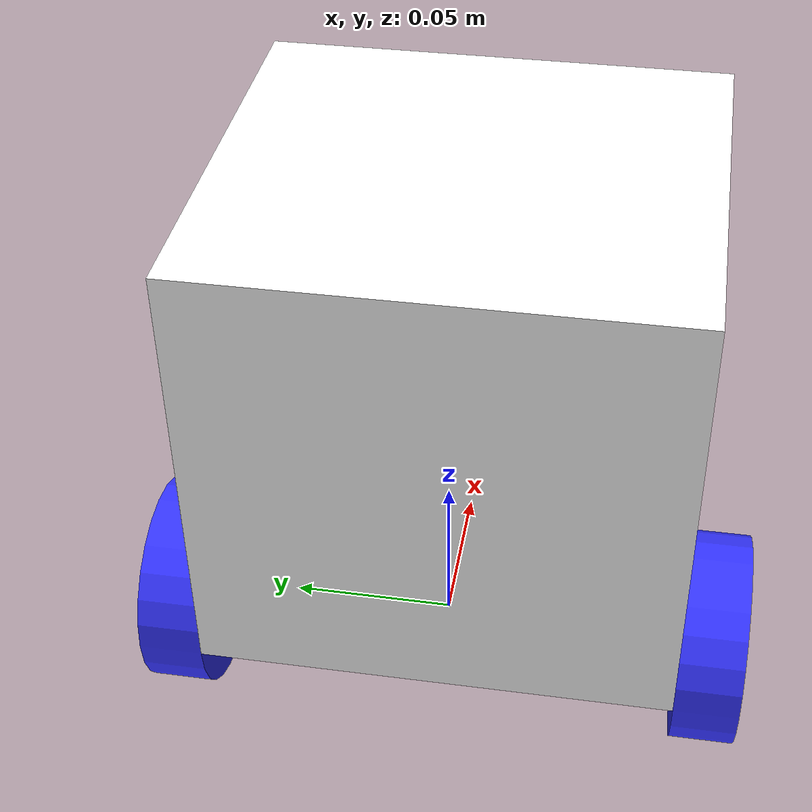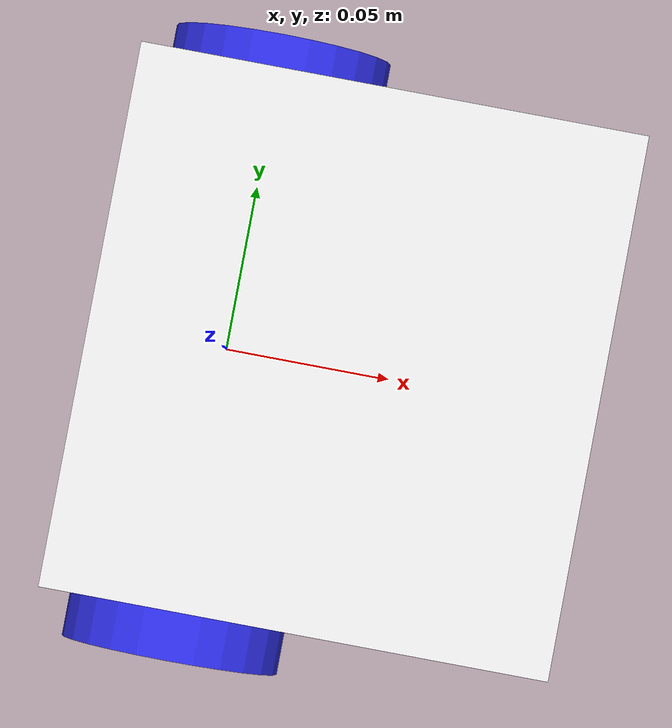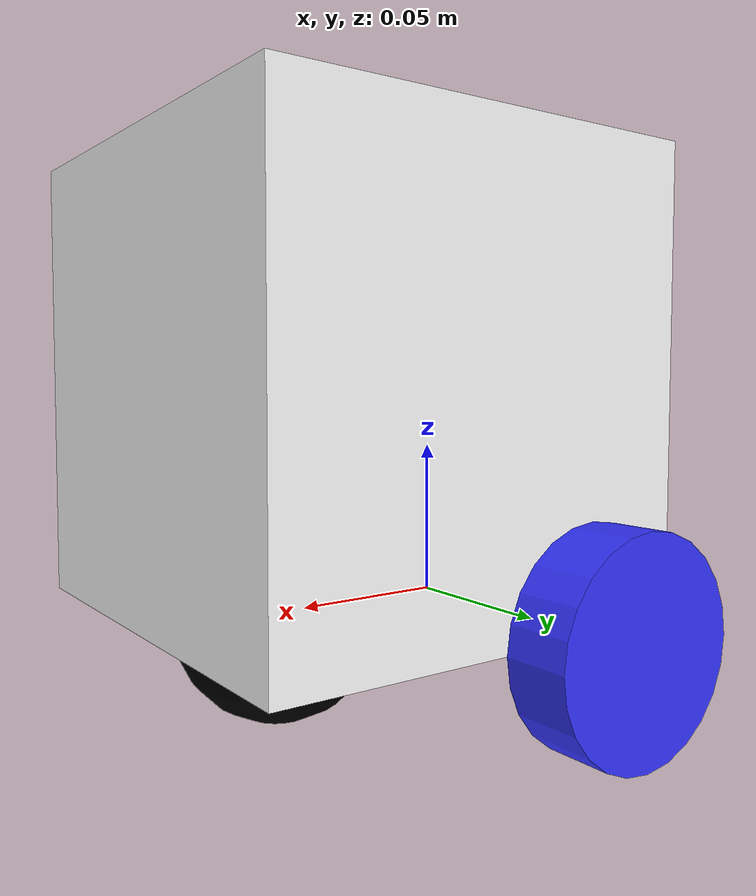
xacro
<?xml version="1.0"?>
<robot xmlns:xacro="http://www.ros.org/wiki/xacro" >

    <xacro:include filename="inertial_macros.xacro"/>

    <material name="white">
        <color rgba="1 1 1 1" />
    </material>

    <material name="orange">
        <color rgba="1 0.3 0.1 1" />
    </material>

    <material name="blue">
        <color rgba="0.2 0.2 1 1" />
    </material>

    <material name="black">
        <color rgba="0 0 0 1" />
    </material>

    <link name="base_link">

    </link>

    <!-- BASE FOOTPRINT -->

    <joint name="base_footprint_joint" type="fixed">
        <parent link="base_link"/>
        <child link="base_footprint" />
        <origin xyz="0 0 0" rpy="0 0 0 "/>
    </joint>

    <link name="base_footprint">

    </link>

    <!-- CHASSIS -->

    <joint name="chassis_joint" type="fixed">
        <parent link="base_link"/>
        <child link="chassis" />
        <origin xyz="-0.033 0 0"/>
    </joint>

    <link name="chassis">
        <visual>
            <origin xyz="0.069 0 0.0715"/>
            <geometry>
                <box size="0.138 0.148 0.143"/>
            </geometry>
            <material name="white"/>
        </visual>
        <collision>
            <origin xyz="0.069 0 0.0715"/>
            <geometry>
                <box size="0.138 0.148 0.143"/>
            </geometry>
        </collision>
        <xacro:inertial_box mass="0.8" x="0.138" y="0.148" z="0.143">
            <origin xyz="0.069 0 0.0715" rpy="0 0 0"/>
        </xacro:inertial_box>
    </link>

    <gazebo reference="chassis">
        <material>Gazebo/White</material>
    </gazebo>

    <!-- LEFT WHEEL-->

    <joint name="left_wheel_joint" type="continuous">
        <parent link ="base_link"/>
        <child link="left_wheel"/>
        <origin xyz="0 0.084 0" rpy="-${pi/2} 0 0"/>
        <axis xyz="0 0 1"/>
    </joint>

    <link name="left_wheel">
        <visual>
            <geometry>
                <cylinder radius="0.033" length="0.02"/>
            </geometry>
            <material name="blue"/>
        </visual>
        <collision>
            <geometry>
                <sphere radius="0.033"/>
            </geometry>
        </collision>
        <xacro:inertial_cylinder mass="0.1" length="0.02" radius="0.033">
            <origin xyz="0 0 0" rpy="0 0 0"/>
        </xacro:inertial_cylinder>
    </link>

    <gazebo reference="left_wheel">
        <material>Gazebo/Blue</material>
    </gazebo>

    <!-- RIGHT WHEEL -->

    <joint name="right_wheel_joint" type="continuous">
        <parent link ="base_link"/>
        <child link="right_wheel"/>
        <origin xyz="0 -0.084 0" rpy="${pi/2} 0 0"/>
        <axis xyz="0 0 -1"/>
    </joint>

    <link name="right_wheel">
        <visual>
            <geometry>
                <cylinder radius="0.033" length="0.02"/>
            </geometry>
            <material name="blue"/>
        </visual>
        <collision>
            <geometry>
                <sphere radius="0.033"/>
            </geometry>
        </collision>
        <xacro:inertial_cylinder mass="0.1" length="0.02" radius="0.033">
            <origin xyz="0 0 0" rpy="0 0 0"/>
        </xacro:inertial_cylinder>
    </link>

    <gazebo reference="right_wheel">
        <material>Gazebo/Blue</material>
    </gazebo>

    <!-- CASTER WHEEL -->

    <joint name="caster_wheel_joint" type="fixed">
        <parent link="base_link"/>
        <child link="caster_wheel"/>
        <origin xyz="0.06 0 0"/>
    </joint>

    <link name="caster_wheel">
        <visual>
            <geometry>
                <sphere radius="0.033"/>
            </geometry>
            <material name="black"/>
        </visual>
        <collision>
            <geometry>
                <sphere radius="0.033"/>
            </geometry>
        </collision>
        <xacro:inertial_sphere mass="0.1" radius="0.033">
            <origin xyz="0 0 0" rpy="0 0 0"/>
        </xacro:inertial_sphere>
    </link>

    <gazebo reference="caster_wheel">
        <material>Gazebo/Black</material>
        <mu1 value = "0.001" />
        <mu2 value = "0.001" />
    </gazebo>

</robot>
